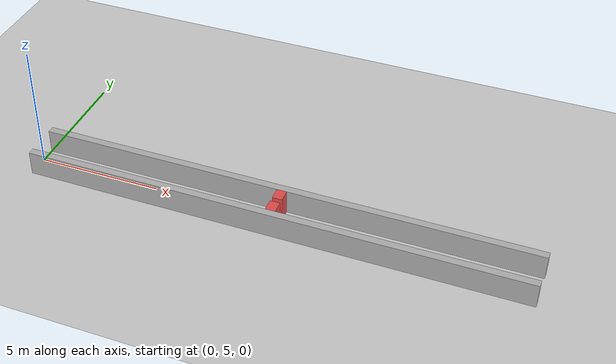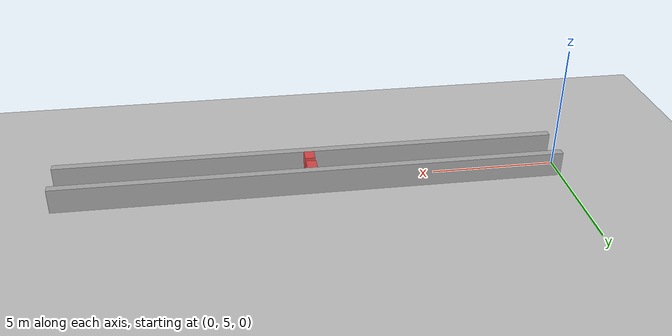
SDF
<sdf version="1.6">
 <world name="tb3_narrow">
  <physics type="ode"><max_step_size>0.001</max_step_size><real_time_factor>1</real_time_factor></physics>
  <include><uri>model://sun</uri></include>
  <include><uri>model://ground_plane</uri></include>
  <model name="top_wall">
   <static>true</static>
   <pose>10 5.75 0.5 0 0 0</pose>
   <link name="link">
    <collision name="c"><geometry><box><size>20 0.3 1</size></box></geometry></collision>
    <visual name="v">
     <geometry><box><size>20 0.3 1</size></box></geometry>
     <material><ambient>0.7 0.7 0.7 1</ambient></material>
    </visual>
   </link>
  </model>
  <model name="bottom_wall">
   <static>true</static>
   <pose>10 4.25 0.5 0 0 0</pose>
   <link name="link">
    <collision name="c"><geometry><box><size>20 0.3 1</size></box></geometry></collision>
    <visual name="v">
     <geometry><box><size>20 0.3 1</size></box></geometry>
     <material><ambient>0.7 0.7 0.7 1</ambient></material>
    </visual>
   </link>
  </model>
  <model name="pinch_left">
   <static>true</static>
   <pose>10 4.65 0.5 0 0 0</pose>
   <link name="link">
    <collision name="c"><geometry><box><size>0.4 0.5 1</size></box></geometry></collision>
    <visual name="v">
     <geometry><box><size>0.4 0.5 1</size></box></geometry>
     <material><ambient>0.9 0.3 0.3 1</ambient></material>
    </visual>
   </link>
  </model>
  <model name="pinch_right">
   <static>true</static>
   <pose>10 5.35 0.5 0 0 0</pose>
   <link name="link">
    <collision name="c"><geometry><box><size>0.4 0.5 1</size></box></geometry></collision>
    <visual name="v">
     <geometry><box><size>0.4 0.5 1</size></box></geometry>
     <material><ambient>0.9 0.3 0.3 1</ambient></material>
    </visual>
   </link>
  </model>
 </world>
</sdf>
